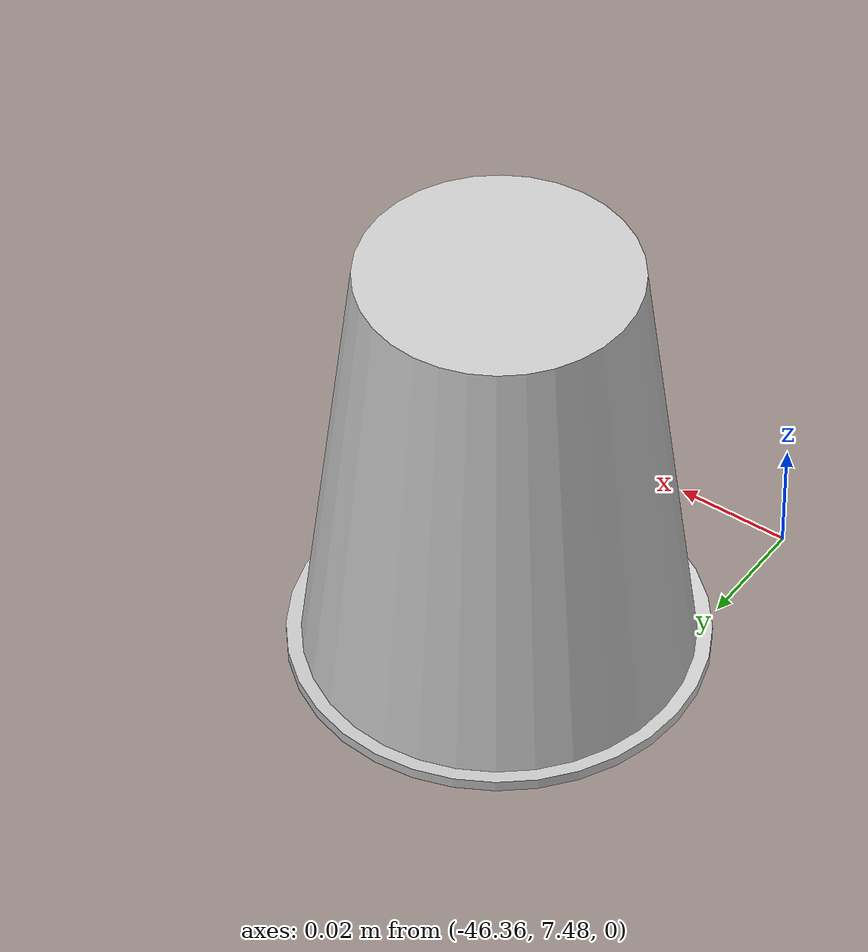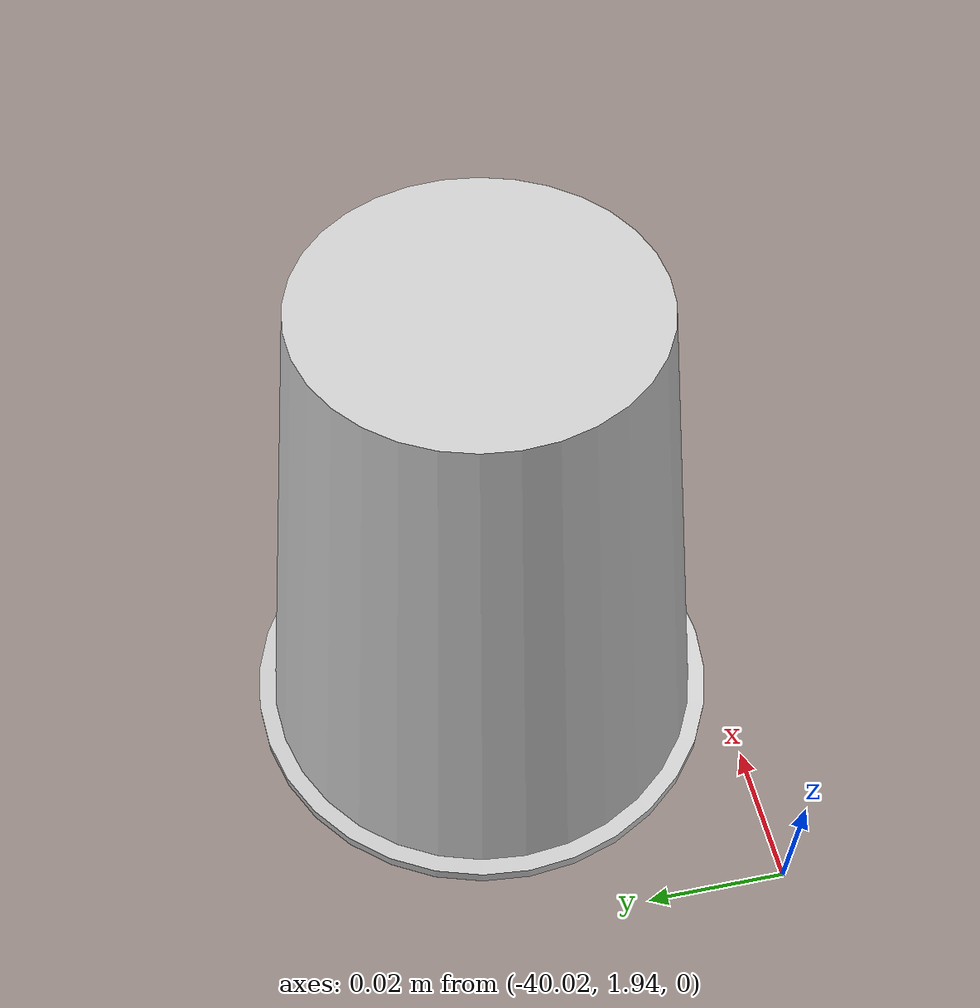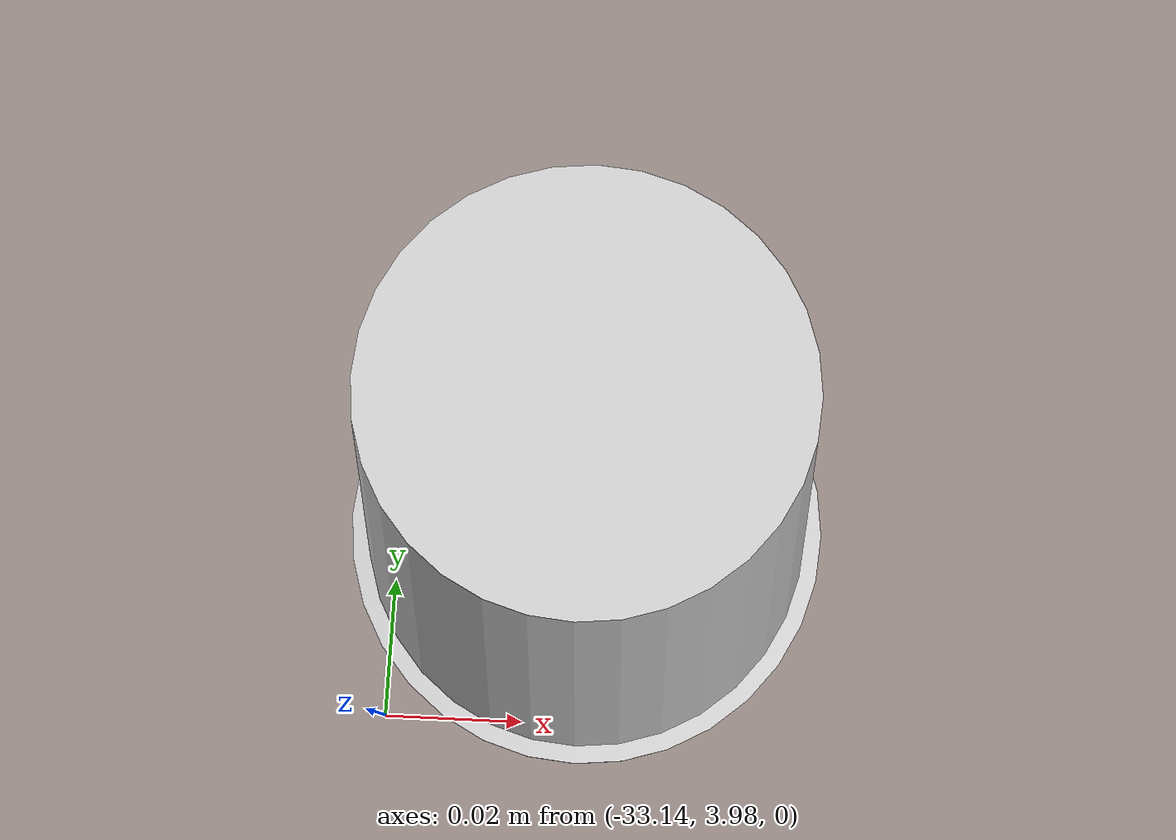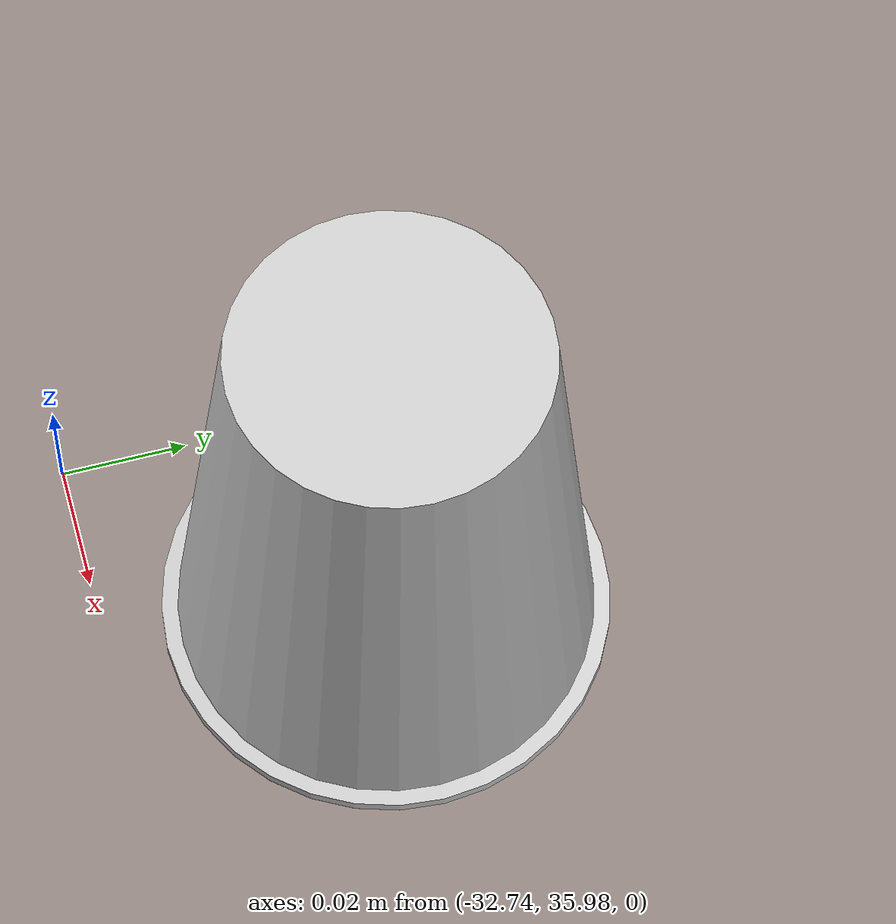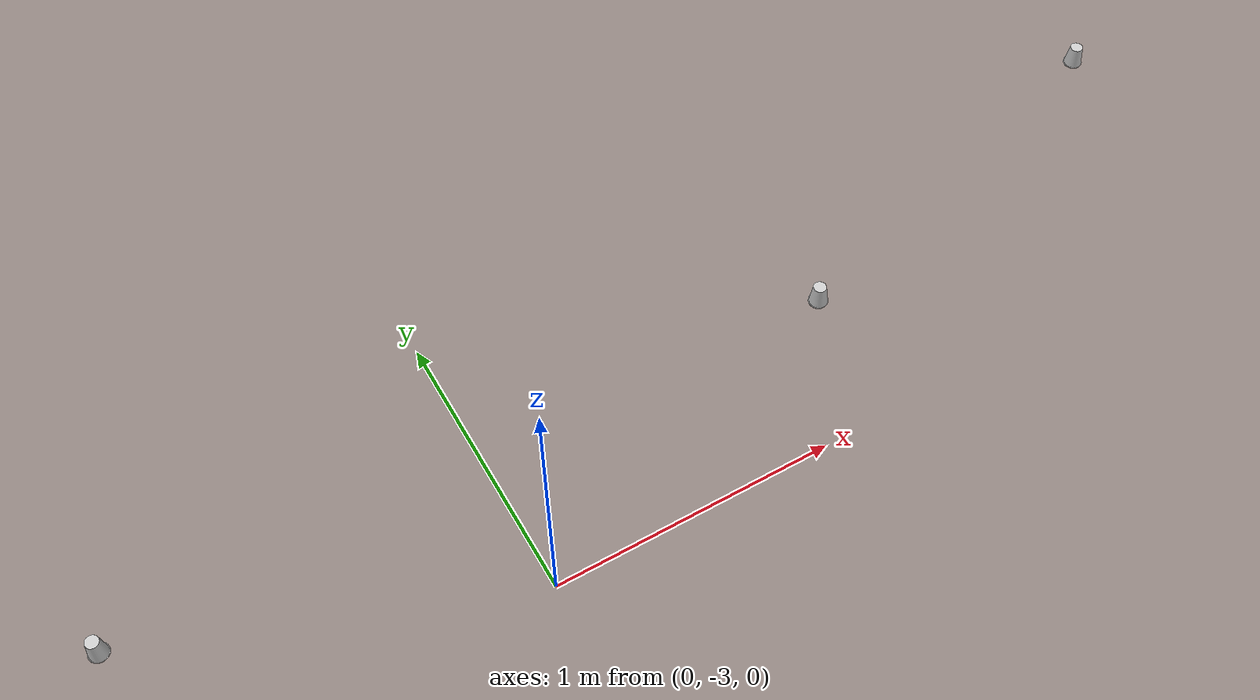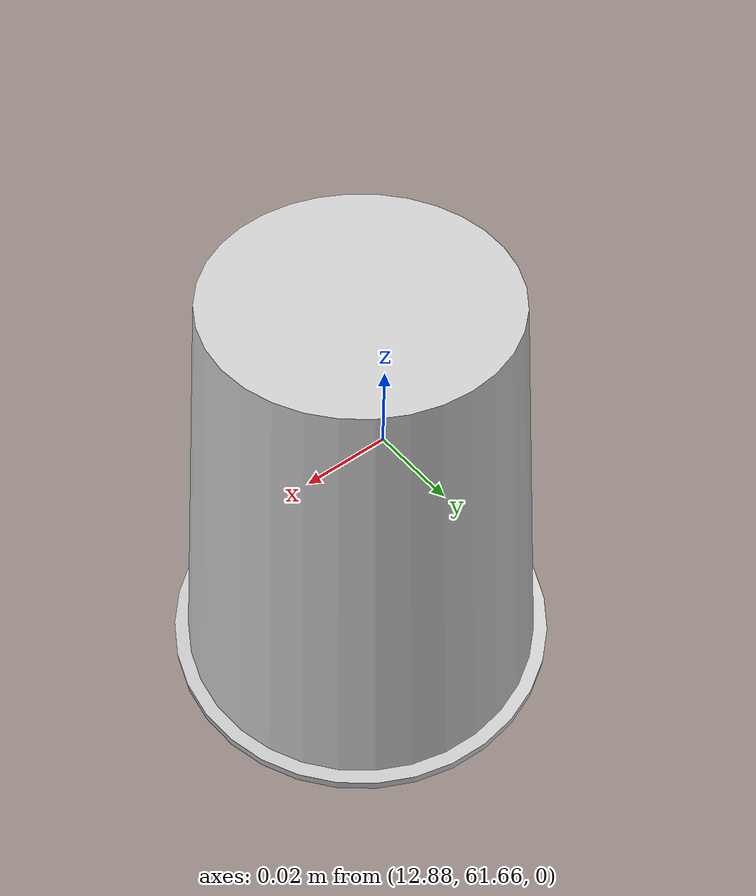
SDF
<?xml version='1.0' encoding='UTF-8'?>
<sdf version="1.4">
  <model name="some track">
    <include>
      <uri>model://cone_yellow</uri>
      <pose>2.7828680666110617 -2.0463804932270078 0 0 0 0</pose>
      <name>cone_right</name>
    </include>
    <include>
      <uri>model://cone_yellow</uri>
      <pose>8.43406707510819 -2.097941009558751 0 0 0 0</pose>
      <name>cone_right</name>
    </include>
    <include>
      <uri>model://cone_yellow</uri>
      <pose>14.08060884338131 -2.104939462188256 0 0 0 0</pose>
      <name>cone_right</name>
    </include>
    <include>
      <uri>model://cone_yellow</uri>
      <pose>19.71853803092057 -2.0876946742251636 0 0 0 0</pose>
      <name>cone_right</name>
    </include>
    <include>
      <uri>model://cone_yellow</uri>
      <pose>25.315519096078337 -2.1343889436436574 0 0 0 0</pose>
      <name>cone_right</name>
    </include>
    <include>
      <uri>model://cone_yellow</uri>
      <pose>30.912600850401557 -2.292287429831599 0 0 0 0</pose>
      <name>cone_right</name>
    </include>
    <include>
      <uri>model://cone_yellow</uri>
      <pose>36.51023048797768 -2.5201947938329208 0 0 0 0</pose>
      <name>cone_right</name>
    </include>
    <include>
      <uri>model://cone_yellow</uri>
      <pose>42.31327057530554 -2.445820509405722 0 0 0 0</pose>
      <name>cone_right</name>
    </include>
    <include>
      <uri>model://cone_yellow</uri>
      <pose>53.21433760636344 3.8380936032925432 0 0 0 0</pose>
      <name>cone_right</name>
    </include>
    <include>
      <uri>model://cone_yellow</uri>
      <pose>54.697710924881385 10.401635960321663 0 0 0 0</pose>
      <name>cone_right</name>
    </include>
    <include>
      <uri>model://cone_yellow</uri>
      <pose>54.68489690374666 16.52303643327789 0 0 0 0</pose>
      <name>cone_right</name>
    </include>
    <include>
      <uri>model://cone_yellow</uri>
      <pose>53.55319606183543 22.402131383489557 0 0 0 0</pose>
      <name>cone_right</name>
    </include>
    <include>
      <uri>model://cone_yellow</uri>
      <pose>50.820379754414645 27.97917632556218 0 0 0 0</pose>
      <name>cone_right</name>
    </include>
    <include>
      <uri>model://cone_yellow</uri>
      <pose>46.76808849334285 32.53604089108327 0 0 0 0</pose>
      <name>cone_right</name>
    </include>
    <include>
      <uri>model://cone_yellow</uri>
      <pose>43.441373371214794 36.705835882162496 0 0 0 0</pose>
      <name>cone_right</name>
    </include>
    <include>
      <uri>model://cone_yellow</uri>
      <pose>40.51137296031424 41.362701936708554 0 0 0 0</pose>
      <name>cone_right</name>
    </include>
    <include>
      <uri>model://cone_yellow</uri>
      <pose>37.81585673035435 46.15884409962177 0 0 0 0</pose>
      <name>cone_right</name>
    </include>
    <include>
      <uri>model://cone_yellow</uri>
      <pose>35.8529975485932 51.167413771211656 0 0 0 0</pose>
      <name>cone_right</name>
    </include>
    <include>
      <uri>model://cone_yellow</uri>
      <pose>29.05581767258459 61.18570237977025 0 0 0 0</pose>
      <name>cone_right</name>
    </include>
    <include>
      <uri>model://cone_yellow</uri>
      <pose>16.593937091225015 63.484898021670624 0 0 0 0</pose>
      <name>cone_right</name>
    </include>
    <include>
      <uri>model://cone_yellow</uri>
      <pose>7.976680543663182 53.99540664427301 0 0 0 0</pose>
      <name>cone_right</name>
    </include>
    <include>
      <uri>model://cone_yellow</uri>
      <pose>6.340173171683253 48.608360732779644 0 0 0 0</pose>
      <name>cone_right</name>
    </include>
    <include>
      <uri>model://cone_yellow</uri>
      <pose>4.618327567923762 43.24955055752755 0 0 0 0</pose>
      <name>cone_right</name>
    </include>
    <include>
      <uri>model://cone_yellow</uri>
      <pose>2.0865792912193095 38.870401761902556 0 0 0 0</pose>
      <name>cone_right</name>
    </include>
    <include>
      <uri>model://cone_yellow</uri>
      <pose>-1.8518758893986995 36.18652376036655 0 0 0 0</pose>
      <name>cone_right</name>
    </include>
    <include>
      <uri>model://cone_yellow</uri>
      <pose>-6.55501118640528 35.63955761190275 0 0 0 0</pose>
      <name>cone_right</name>
    </include>
    <include>
      <uri>model://cone_yellow</uri>
      <pose>-11.5326916742293 36.50389456744546 0 0 0 0</pose>
      <name>cone_right</name>
    </include>
    <include>
      <uri>model://cone_yellow</uri>
      <pose>-14.817333218334916 39.55753542179203 0 0 0 0</pose>
      <name>cone_right</name>
    </include>
    <include>
      <uri>model://cone_yellow</uri>
      <pose>-18.903426306217643 43.85499202864376 0 0 0 0</pose>
      <name>cone_right</name>
    </include>
    <include>
      <uri>model://cone_yellow</uri>
      <pose>-35.98793859447705 38.31018287694056 0 0 0 0</pose>
      <name>cone_right</name>
    </include>
    <include>
      <uri>model://cone_yellow</uri>
      <pose>-39.22666333945276 33.68345560481275 0 0 0 0</pose>
      <name>cone_right</name>
    </include>
    <include>
      <uri>model://cone_yellow</uri>
      <pose>-42.22571575601276 28.731621211321137 0 0 0 0</pose>
      <name>cone_right</name>
    </include>
    <include>
      <uri>model://cone_yellow</uri>
      <pose>-44.94502212734931 23.790449987164397 0 0 0 0</pose>
      <name>cone_right</name>
    </include>
    <include>
      <uri>model://cone_yellow</uri>
      <pose>-47.56652154923297 18.547765799363777 0 0 0 0</pose>
      <name>cone_right</name>
    </include>
    <include>
      <uri>model://cone_yellow</uri>
      <pose>-47.99890743797633 11.957130623686945 0 0 0 0</pose>
      <name>cone_right</name>
    </include>
    <include>
      <uri>model://cone_yellow</uri>
      <pose>-39.9778971214576 1.9757656390657796 0 0 0 0</pose>
      <name>cone_right</name>
    </include>
    <include>
      <uri>model://cone_yellow</uri>
      <pose>-34.12607326744504 0.1401371999283918 0 0 0 0</pose>
      <name>cone_right</name>
    </include>
    <include>
      <uri>model://cone_yellow</uri>
      <pose>-28.479292670493432 -0.9963151583999543 0 0 0 0</pose>
      <name>cone_right</name>
    </include>
    <include>
      <uri>model://cone_yellow</uri>
      <pose>-22.748277559510836 -1.7949902372799111 0 0 0 0</pose>
      <name>cone_right</name>
    </include>
    <include>
      <uri>model://cone_yellow</uri>
      <pose>-16.91911789768213 -1.968082941947827 0 0 0 0</pose>
      <name>cone_right</name>
    </include>
    <include>
      <uri>model://cone_yellow</uri>
      <pose>-11.29164414346724 -2.0316926314648804 0 0 0 0</pose>
      <name>cone_right</name>
    </include>
    <include>
      <uri>model://cone_yellow</uri>
      <pose>-2.949949956161703 -1.9956343554492406 0 0 0 0</pose>
      <name>cone_right</name>
    </include>
    <include>
      <uri>model://cone_yellow</uri>
      <pose>-6.770259185350177 -1.9472760107759726 0 0 0 0</pose>
      <name>cone_right</name>
    </include>
    <include>
      <uri>model://cone_yellow</uri>
      <pose>47.00422009132809 -1.4153342193699885 0 0 0 0</pose>
      <name>cone_right</name>
    </include>
    <include>
      <uri>model://cone_yellow</uri>
      <pose>50.82452932051656 0.9058663249470555 0 0 0 0</pose>
      <name>cone_right</name>
    </include>
    <include>
      <uri>model://cone_yellow</uri>
      <pose>54.25797179231886 6.999017753779302 0 0 0 0</pose>
      <name>cone_right</name>
    </include>
    <include>
      <uri>model://cone_yellow</uri>
      <pose>34.334333786930884 55.11557070368477 0 0 0 0</pose>
      <name>cone_right</name>
    </include>
    <include>
      <uri>model://cone_yellow</uri>
      <pose>31.771341519247475 58.59737152016034 0 0 0 0</pose>
      <name>cone_right</name>
    </include>
    <include>
      <uri>model://cone_yellow</uri>
      <pose>25.823265124435043 63.43320598748752 0 0 0 0</pose>
      <name>cone_right</name>
    </include>
    <include>
      <uri>model://cone_yellow</uri>
      <pose>21.277580725147494 64.1585811575866 0 0 0 0</pose>
      <name>cone_right</name>
    </include>
    <include>
      <uri>model://cone_yellow</uri>
      <pose>12.911587096671468 61.692305579249734 0 0 0 0</pose>
      <name>cone_right</name>
    </include>
    <include>
      <uri>model://cone_yellow</uri>
      <pose>9.719936348235525 58.69408820950689 0 0 0 0</pose>
      <name>cone_right</name>
    </include>
    <include>
      <uri>model://cone_yellow</uri>
      <pose>-22.355750687340056 46.2115904907186 0 0 0 0</pose>
      <name>cone_right</name>
    </include>
    <include>
      <uri>model://cone_yellow</uri>
      <pose>-25.630013607926173 46.76569652343318 0 0 0 0</pose>
      <name>cone_right</name>
    </include>
    <include>
      <uri>model://cone_yellow</uri>
      <pose>-28.652410150005664 45.6071111823027 0 0 0 0</pose>
      <name>cone_right</name>
    </include>
    <include>
      <uri>model://cone_yellow</uri>
      <pose>-31.624433416383823 43.79367325705501 0 0 0 0</pose>
      <name>cone_right</name>
    </include>
    <include>
      <uri>model://cone_yellow</uri>
      <pose>-33.74011099583947 41.07351636918347 0 0 0 0</pose>
      <name>cone_right</name>
    </include>
    <include>
      <uri>model://cone_yellow</uri>
      <pose>-46.333429921170676 7.524914752101154 0 0 0 0</pose>
      <name>cone_right</name>
    </include>
    <include>
      <uri>model://cone_yellow</uri>
      <pose>-43.562899757597805 3.948412177307091 0 0 0 0</pose>
      <name>cone_right</name>
    </include>
    <include>
      <uri>model://cone_blue</uri>
      <pose>2.849130199307963 1.9530706353368177 0 0 0 0</pose>
      <name>cone_left</name>
    </include>
    <include>
      <uri>model://cone_blue</uri>
      <pose>8.461411077153747 1.9019655275433511 0 0 0 0</pose>
      <name>cone_left</name>
    </include>
    <include>
      <uri>model://cone_blue</uri>
      <pose>14.07890076481651 1.8950601731201797 0 0 0 0</pose>
      <name>cone_left</name>
    </include>
    <include>
      <uri>model://cone_blue</uri>
      <pose>19.706427938743857 1.9122869939412637 0 0 0 0</pose>
      <name>cone_left</name>
    </include>
    <include>
      <uri>model://cone_blue</uri>
      <pose>25.370876018314203 1.8652279894088784 0 0 0 0</pose>
      <name>cone_left</name>
    </include>
    <include>
      <uri>model://cone_blue</uri>
      <pose>31.04060222535701 1.7056640015904376 0 0 0 0</pose>
      <name>cone_left</name>
    </include>
    <include>
      <uri>model://cone_blue</uri>
      <pose>36.68282649612972 1.4760797985806162 0 0 0 0</pose>
      <name>cone_left</name>
    </include>
    <include>
      <uri>model://cone_blue</uri>
      <pose>42.11351291354063 1.5491884863996963 0 0 0 0</pose>
      <name>cone_left</name>
    </include>
    <include>
      <uri>model://cone_blue</uri>
      <pose>50.72558943171766 10.87307083763423 0 0 0 0</pose>
      <name>cone_left</name>
    </include>
    <include>
      <uri>model://cone_blue</uri>
      <pose>50.68802505287253 16.3648738343803 0 0 0 0</pose>
      <name>cone_left</name>
    </include>
    <include>
      <uri>model://cone_blue</uri>
      <pose>49.6803731137098 21.40151037008265 0 0 0 0</pose>
      <name>cone_left</name>
    </include>
    <include>
      <uri>model://cone_blue</uri>
      <pose>47.38173169707615 25.935723478598923 0 0 0 0</pose>
      <name>cone_left</name>
    </include>
    <include>
      <uri>model://cone_blue</uri>
      <pose>43.897629853741996 29.750279379693467 0 0 0 0</pose>
      <name>cone_left</name>
    </include>
    <include>
      <uri>model://cone_blue</uri>
      <pose>40.20549866534428 34.35442888040644 0 0 0 0</pose>
      <name>cone_left</name>
    </include>
    <include>
      <uri>model://cone_blue</uri>
      <pose>37.10726919273353 39.26220734268009 0 0 0 0</pose>
      <name>cone_left</name>
    </include>
    <include>
      <uri>model://cone_blue</uri>
      <pose>34.28207815907928 44.28470189338521 0 0 0 0</pose>
      <name>cone_left</name>
    </include>
    <include>
      <uri>model://cone_blue</uri>
      <pose>32.089642952598574 49.81199421077801 0 0 0 0</pose>
      <name>cone_left</name>
    </include>
    <include>
      <uri>model://cone_blue</uri>
      <pose>29.893266947905673 54.694187719997075 0 0 0 0</pose>
      <name>cone_left</name>
    </include>
    <include>
      <uri>model://cone_blue</uri>
      <pose>26.473211742333923 58.13117351118281 0 0 0 0</pose>
      <name>cone_left</name>
    </include>
    <include>
      <uri>model://cone_blue</uri>
      <pose>21.990283431753475 59.898180262503786 0 0 0 0</pose>
      <name>cone_left</name>
    </include>
    <include>
      <uri>model://cone_blue</uri>
      <pose>17.272244887148034 59.54283022240714 0 0 0 0</pose>
      <name>cone_left</name>
    </include>
    <include>
      <uri>model://cone_blue</uri>
      <pose>13.41305934079631 56.9894744339824 0 0 0 0</pose>
      <name>cone_left</name>
    </include>
    <include>
      <uri>model://cone_blue</uri>
      <pose>11.797681336736076 52.812210574580284 0 0 0 0</pose>
      <name>cone_left</name>
    </include>
    <include>
      <uri>model://cone_blue</uri>
      <pose>10.148625962892948 47.38537776596159 0 0 0 0</pose>
      <name>cone_left</name>
    </include>
    <include>
      <uri>model://cone_blue</uri>
      <pose>8.417962505918702 41.99944082715657 0 0 0 0</pose>
      <name>cone_left</name>
    </include>
    <include>
      <uri>model://cone_blue</uri>
      <pose>5.3577469785497405 36.56834573274834 0 0 0 0</pose>
      <name>cone_left</name>
    </include>
    <include>
      <uri>model://cone_blue</uri>
      <pose>-6.3696728506384135 31.64385370629423 0 0 0 0</pose>
      <name>cone_left</name>
    </include>
    <include>
      <uri>model://cone_blue</uri>
      <pose>-17.740984732806517 36.827652306725035 0 0 0 0</pose>
      <name>cone_left</name>
    </include>
    <include>
      <uri>model://cone_blue</uri>
      <pose>-21.64417625065138 40.94152506605666 0 0 0 0</pose>
      <name>cone_left</name>
    </include>
    <include>
      <uri>model://cone_blue</uri>
      <pose>-25.74310827349477 41.87669063607248 0 0 0 0</pose>
      <name>cone_left</name>
    </include>
    <include>
      <uri>model://cone_blue</uri>
      <pose>-29.77877917230353 39.93322163658159 0 0 0 0</pose>
      <name>cone_left</name>
    </include>
    <include>
      <uri>model://cone_blue</uri>
      <pose>-32.70558604478216 36.024102882821495 0 0 0 0</pose>
      <name>cone_left</name>
    </include>
    <include>
      <uri>model://cone_blue</uri>
      <pose>-35.94404517399152 31.397757028931874 0 0 0 0</pose>
      <name>cone_left</name>
    </include>
    <include>
      <uri>model://cone_blue</uri>
      <pose>-38.74486603801702 26.760914424219354 0 0 0 0</pose>
      <name>cone_left</name>
    </include>
    <include>
      <uri>model://cone_blue</uri>
      <pose>-41.46734866584851 21.81414350911677 0 0 0 0</pose>
      <name>cone_left</name>
    </include>
    <include>
      <uri>model://cone_blue</uri>
      <pose>-43.87843313364551 16.99921685315331 0 0 0 0</pose>
      <name>cone_left</name>
    </include>
    <include>
      <uri>model://cone_blue</uri>
      <pose>-44.00764473586817 12.221369233205513 0 0 0 0</pose>
      <name>cone_left</name>
    </include>
    <include>
      <uri>model://cone_blue</uri>
      <pose>-41.92614546150328 8.018155504969325 0 0 0 0</pose>
      <name>cone_left</name>
    </include>
    <include>
      <uri>model://cone_blue</uri>
      <pose>-38.09514076364604 5.504962218617587 0 0 0 0</pose>
      <name>cone_left</name>
    </include>
    <include>
      <uri>model://cone_blue</uri>
      <pose>-33.112029686292075 4.009467324836642 0 0 0 0</pose>
      <name>cone_left</name>
    </include>
    <include>
      <uri>model://cone_blue</uri>
      <pose>-27.72858872539876 2.9326088147534195 0 0 0 0</pose>
      <name>cone_left</name>
    </include>
    <include>
      <uri>model://cone_blue</uri>
      <pose>-22.307460444340347 2.180645595008148 0 0 0 0</pose>
      <name>cone_left</name>
    </include>
    <include>
      <uri>model://cone_blue</uri>
      <pose>-16.874986408683252 2.031673602103166 0 0 0 0</pose>
      <name>cone_left</name>
    </include>
    <include>
      <uri>model://cone_blue</uri>
      <pose>-11.22996248381204 1.9678317618676795 0 0 0 0</pose>
      <name>cone_left</name>
    </include>
    <include>
      <uri>model://cone_blue</uri>
      <pose>-3.095024990181514 2.066466597105588 0 0 0 0</pose>
      <name>cone_left</name>
    </include>
    <include>
      <uri>model://cone_blue</uri>
      <pose>-7.012050908716532 1.8730332184125018 0 0 0 0</pose>
      <name>cone_left</name>
    </include>
    <include>
      <uri>model://cone_blue</uri>
      <pose>46.08541154253592 2.3082583204719427 0 0 0 0</pose>
      <name>cone_left</name>
    </include>
    <include>
      <uri>model://cone_blue</uri>
      <pose>48.50332877619951 3.759008660670098 0 0 0 0</pose>
      <name>cone_left</name>
    </include>
    <include>
      <uri>model://cone_blue</uri>
      <pose>50.19587083976403 6.999017753779302 0 0 0 0</pose>
      <name>cone_left</name>
    </include>
    <include>
      <uri>model://cone_blue</uri>
      <pose>2.1276762345318474 33.596107324078815 0 0 0 0</pose>
      <name>cone_left</name>
    </include>
    <include>
      <uri>model://cone_blue</uri>
      <pose>-1.9827830626962566 32.19371532855393 0 0 0 0</pose>
      <name>cone_left</name>
    </include>
    <include>
      <uri>model://cone_blue</uri>
      <pose>-10.669150724632708 31.704087088737055 0 0 0 0</pose>
      <name>cone_left</name>
    </include>
    <include>
      <uri>model://cone_blue</uri>
      <pose>-14.648639505037366 33.51752501398475 0 0 0 0</pose>
      <name>cone_left</name>
    </include>
    <include>
      <uri>model://cone_orange_big</uri>
      <pose>-1.3 2.5 0 0 0 0</pose>
      <name>cone_orange_big</name>
    </include>
    <include>
      <uri>model://cone_orange_big</uri>
      <pose>-1.3 -2.5 0 0 0 0</pose>
      <name>cone_orange_big</name>
    </include>
    <include>
      <uri>model://cone_orange_big</uri>
      <pose>1.3 2.5 0 0 0 0</pose>
      <name>cone_orange_big</name>
    </include>
    <include>
      <uri>model://cone_orange_big</uri>
      <pose>1.3 -2.5 0 0 0 0</pose>
      <name>cone_orange_big</name>
    </include>
  </model>
</sdf>

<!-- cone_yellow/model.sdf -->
<sdf version='1.4'>
  <model name="cone_yellow">
    <link name="link">
    <collision name="collision"><geometry><box><size> 0.05 0.05 0.01</size>
             </box></geometry></collision>
      <visual name="visual">
        <geometry>
          <mesh>
            <uri>model://cup.dae</uri>
            <scale>1 1 1</scale>
          </mesh>
        </geometry>
        <material>
            <script>
              <uri>model://cone_yellow/materials/scripts</uri>
              <uri>model://cone_yellow/materials/textures</uri>
              <name>cone_yellow/Image</name>
            </script>
        </material>
      </visual>
    </link>
  </model>
</sdf>

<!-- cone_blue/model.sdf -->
<sdf version='1.4'>
  <model name="cone_blue">
    <link name="link">
    <collision name="collision"><geometry><box><size> 0.05 0.05 0.01</size>
             </box></geometry></collision>
      <visual name="visual">
        <geometry>
          <mesh>
            <uri>model://cup.dae</uri>
            <scale>1 1 1</scale>
          </mesh>
        </geometry>
        <material>
            <script>
              <uri>model://cone_blue/materials/scripts</uri>
              <uri>model://cone_blue/materials/textures</uri>
              <name>cone_blue/Image</name>
            </script>
        </material>
      </visual>
    </link>
  </model>
</sdf>

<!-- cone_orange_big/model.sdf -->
<sdf version='1.4'>
  <model name="cone_orange_big">
    <link name="link">
    <collision name="collision"><geometry><box><size> 0.05 0.05 0.01</size>
             </box></geometry></collision>
      <visual name="visual">
        <geometry>
          <mesh>
            <uri>model://cup.dae</uri>
            <scale>1 1 1</scale>
          </mesh>
        </geometry>
        <material>
            <script>
              <uri>model://cone_orange_big/materials/scripts</uri>
              <uri>model://cone_orange_big/materials/textures</uri>
              <name>cone_orange_big/Image</name>
            </script>
        </material>
      </visual>
    </link>
  </model>
</sdf>
